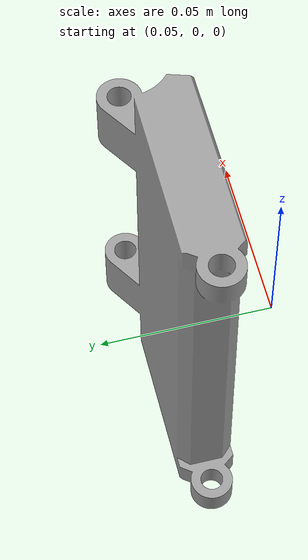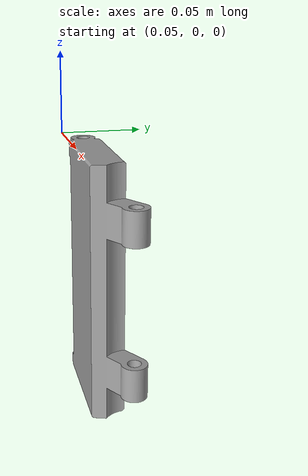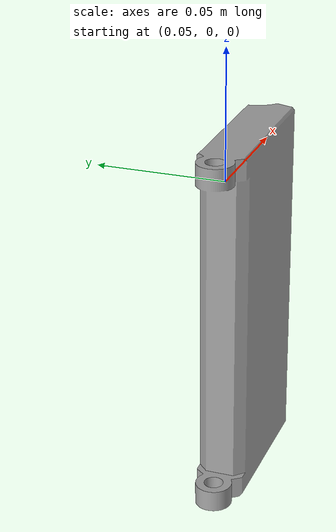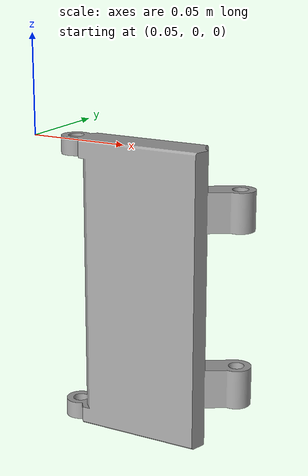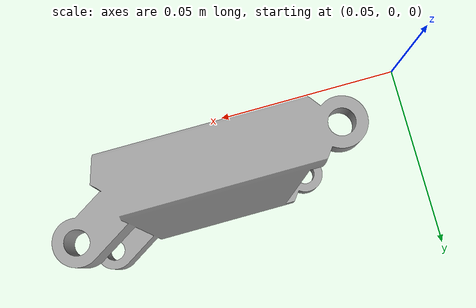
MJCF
<mujoco model="f2_block_2">
  <default>
    <default class="visual">
      <geom group="2" type="mesh" contype="0" conaffinity="0"/>
    </default>
    <default class="collision">
      <geom group="3" type="mesh"/>
    </default>
  </default>
  <asset>
    <material name="Steel_-_Satin" specular="0.5" shininess="0.5" rgba="0.627451 0.627451 0.627451 1.0"/>
    <mesh file="f2_block_2.obj"/>
    <mesh file="f2_block_2_collision_0.obj"/>
    <mesh file="f2_block_2_collision_1.obj"/>
    <mesh file="f2_block_2_collision_2.obj"/>
    <mesh file="f2_block_2_collision_3.obj"/>
    <mesh file="f2_block_2_collision_4.obj"/>
    <mesh file="f2_block_2_collision_5.obj"/>
    <mesh file="f2_block_2_collision_6.obj"/>
    <mesh file="f2_block_2_collision_7.obj"/>
    <mesh file="f2_block_2_collision_8.obj"/>
    <mesh file="f2_block_2_collision_9.obj"/>
    <mesh file="f2_block_2_collision_10.obj"/>
    <mesh file="f2_block_2_collision_11.obj"/>
    <mesh file="f2_block_2_collision_12.obj"/>
    <mesh file="f2_block_2_collision_13.obj"/>
    <mesh file="f2_block_2_collision_14.obj"/>
  </asset>
  <worldbody>
    <body name="f2_block_2">
      <geom material="Steel_-_Satin" mesh="f2_block_2" class="visual"/>
      <geom mesh="f2_block_2_collision_0" rgba="0.2992562329040618 0.4252512394630181 0.831912094117138 1" class="collision"/>
      <geom mesh="f2_block_2_collision_1" rgba="0.1595922727019311 0.9696162877792459 0.7224056856424816 1" class="collision"/>
      <geom mesh="f2_block_2_collision_2" rgba="0.5697960670610052 0.058134170473644775 0.022095857956316856 1" class="collision"/>
      <geom mesh="f2_block_2_collision_3" rgba="0.4917060296470629 0.3552274733575328 0.8838357735143907 1" class="collision"/>
      <geom mesh="f2_block_2_collision_4" rgba="0.818091198063223 0.9977975896167404 0.9309074839164203 1" class="collision"/>
      <geom mesh="f2_block_2_collision_5" rgba="0.2045959024773919 0.8322210462263822 0.8901627770026551 1" class="collision"/>
      <geom mesh="f2_block_2_collision_6" rgba="0.009942686740152862 0.9703182884271851 0.5732672283776591 1" class="collision"/>
      <geom mesh="f2_block_2_collision_7" rgba="0.7804299043810422 0.31807659347790285 0.5917882320637473 1" class="collision"/>
      <geom mesh="f2_block_2_collision_8" rgba="0.9671768451814209 0.19808913405221396 0.23480364706907042 1" class="collision"/>
      <geom mesh="f2_block_2_collision_9" rgba="0.15242985507146656 0.36353944985387865 0.73685715043536 1" class="collision"/>
      <geom mesh="f2_block_2_collision_10" rgba="0.7302542886026162 0.823207302484809 0.7233513146871697 1" class="collision"/>
      <geom mesh="f2_block_2_collision_11" rgba="0.7164745169684029 0.1446042318676245 0.4511542596490652 1" class="collision"/>
      <geom mesh="f2_block_2_collision_12" rgba="0.8984840228586387 0.036138279900696735 0.5181052602017654 1" class="collision"/>
      <geom mesh="f2_block_2_collision_13" rgba="0.9809984678723527 0.12621369935889304 0.02902941078799759 1" class="collision"/>
      <geom mesh="f2_block_2_collision_14" rgba="0.7693930973723884 0.24307205425641587 0.3650497666124821 1" class="collision"/>
    </body>
  </worldbody>
</mujoco>
